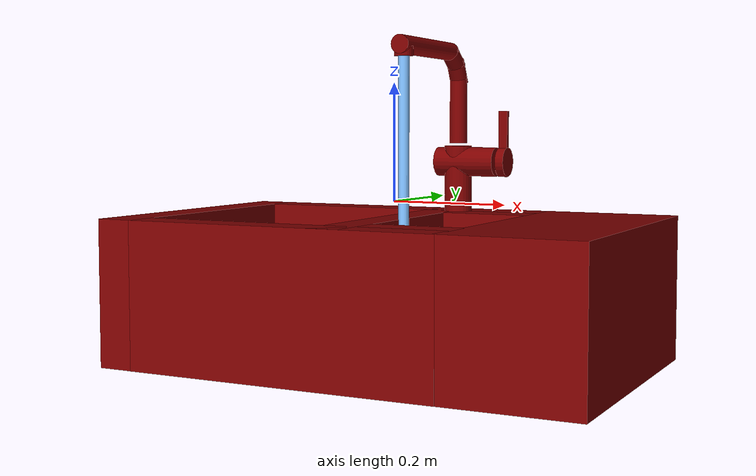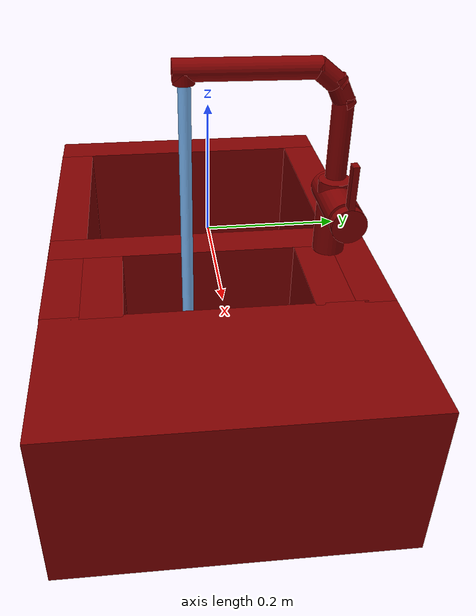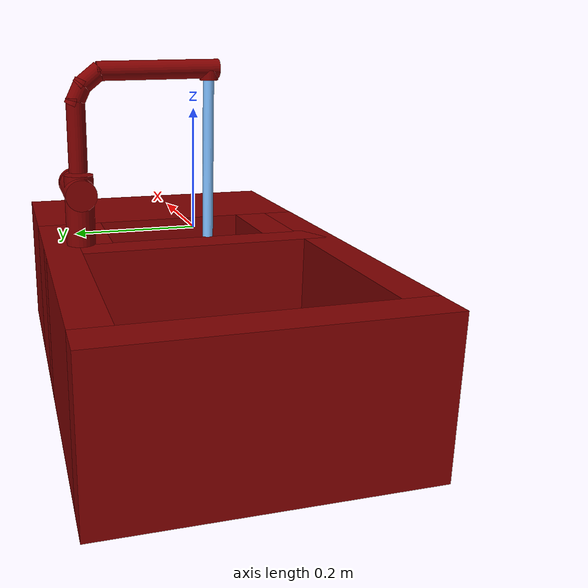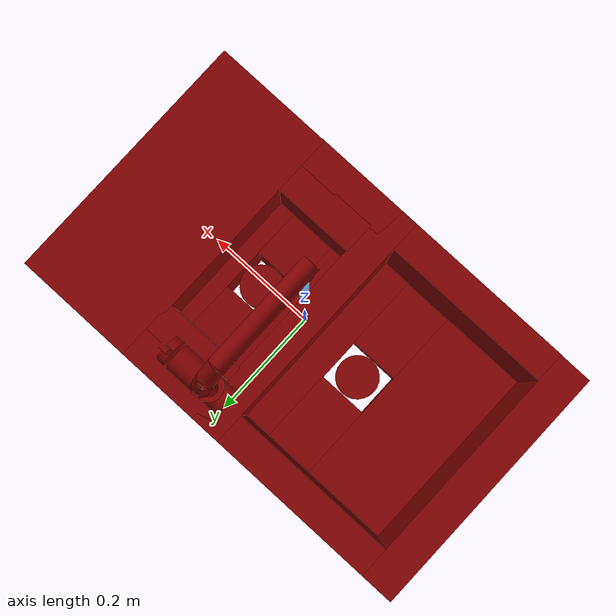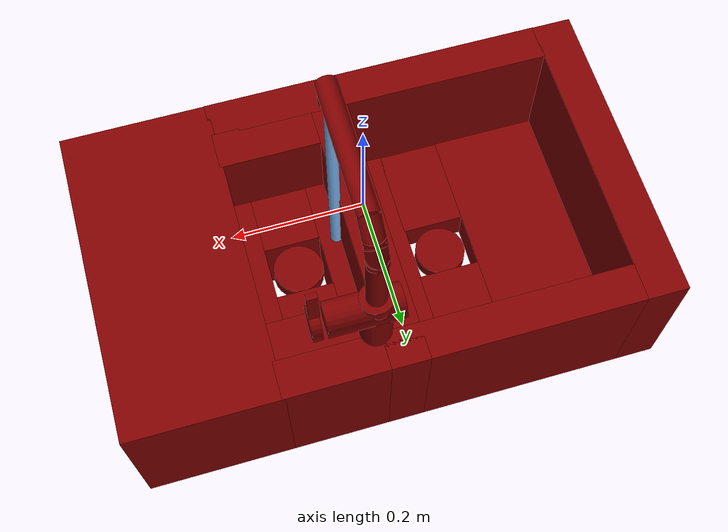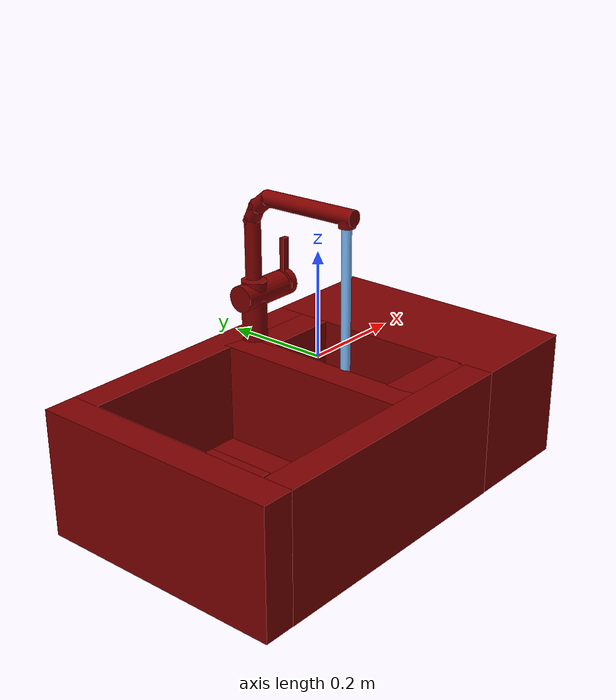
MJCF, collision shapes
<mujoco model="model">
  <compiler angle="radian"/>
  <asset>
    <mesh file="visuals/handle.obj" name="handle_vis"/>
    <mesh file="visuals/Body001.obj" name="Body001_vis"/>
    <mesh file="visuals/Funnel001.obj" name="Funnel001_vis"/>
    <mesh file="visuals/Funnel002.obj" name="Funnel002_vis"/>
    <mesh file="visuals/spout.obj" name="spout_vis"/>
    <texture file="visuals/T_BC001.png" name="Body001_material" type="2d"/>
    <material name="Body001_material" rgba="1 1 1 1.0" texture="Body001_material" shininess="0.4472135901451111" specular="0.3103448502657381"/>
    <texture file="visuals/T_BC001.png" name="handle_material" type="2d"/>
    <material name="handle_material" rgba="1 1 1 1.0" texture="handle_material" shininess="0.4472135901451111" specular="0.3103448502657381"/>
    <texture file="visuals/T_BC001.png" name="Funnel001_material" type="2d"/>
    <material name="Funnel001_material" rgba="1 1 1 1.0" texture="Funnel001_material" shininess="0.4472135901451111" specular="0.3103448502657381"/>
    <texture file="visuals/T_BC001.png" name="Funnel002_material" type="2d"/>
    <material name="Funnel002_material" rgba="1 1 1 1.0" texture="Funnel002_material" shininess="0.4472135901451111" specular="0.3103448502657381"/>
    <texture file="visuals/T_BC001.png" name="spout_material" type="2d"/>
    <material name="spout_material" rgba="1 1 1 1.0" texture="spout_material" shininess="0.4472135901451111" specular="0.3103448502657381"/>
  </asset>
  <default>
    <default class="visual">
      <geom conaffinity="0" contype="0" group="1" type="mesh"/>
    </default>
    <default class="collision">
      <geom group="0" rgba="0.5 0 0 0.5"/>
    </default>
    <default class="spawn">
      <geom group="0" rgba="1 1 1 0.5" contype="0" conaffinity="0"/>
      <site group="0" rgba="1 1 1 0.5"/>
    </default>
    <default class="region">
      <geom group="1" conaffinity="0" contype="0" rgba="0 1 0 0"/>
    </default>
  </default>
  <worldbody>
    <body>
      <body name="object">
        <geom mesh="Body001_vis" type="mesh" solimp="0.998 0.998 0.001" solref="0.001 1" density="100" friction="0.95 0.3 0.1" class="visual" material="Body001_material"/>
        <geom class="collision" type="box" pos="-0.393599 -0.000057 -0.152394" size="0.03231722488999367 0.25210869312286377 0.12578809261322021" quat="1.0 0.0 0.0 0.0"/>
        <geom class="collision" type="box" pos="0.000463 -0.000057 -0.152394" size="0.02948875166475773 0.25210869312286377 0.12578809261322021" quat="1.0 0.0 0.0 0.0"/>
        <geom class="collision" type="box" pos="0.303576 -0.000057 -0.152394" size="0.11784769594669342 0.25210869312286377 0.12578809261322021" quat="1.0 0.0 0.0 0.0"/>
        <geom class="collision" type="box" pos="-0.086141 0.222530 -0.152394" size="0.2771652936935425 0.029488762840628624 0.12578809261322021" quat="1.0 0.0 0.0 0.0"/>
        <geom class="collision" type="box" pos="-0.086141 -0.223226 -0.152394" size="0.2771652936935425 0.029488762840628624 0.12578809261322021" quat="1.0 0.0 0.0 0.0"/>
        <geom class="collision" type="box" pos="0.109079 -0.167166 -0.152394" size="0.08194547891616821 0.03034169226884842 0.12578809261322021" quat="1.0 0.0 0.0 0.0"/>
        <geom class="collision" type="box" pos="0.109079 0.165000 -0.152394" size="0.08194547891616821 0.03034169226884842 0.12578809261322021" quat="1.0 0.0 0.0 0.0"/>
        <geom class="collision" type="box" pos="-0.274527 -0.000369 -0.250090" size="0.08836553245782852 0.19444924592971802 0.028092036023736" quat="1.0 0.0 0.0 0.0"/>
        <geom class="collision" type="box" pos="-0.057293 -0.000733 -0.250090" size="0.0294963289052248 0.19408562779426575 0.028092036023736" quat="1.0 0.0 0.0 0.0"/>
        <geom class="collision" type="box" pos="-0.136239 0.118857 -0.250090" size="0.05127447471022606 0.07449623197317123 0.028092036023736" quat="1.0 0.0 0.0 0.0"/>
        <geom class="collision" type="box" pos="-0.136239 -0.118214 -0.250090" size="0.05127447471022606 0.07449623197317123 0.028092036023736" quat="1.0 0.0 0.0 0.0"/>
        <geom class="collision" type="box" pos="0.045072 -0.002129 -0.218055" size="0.01764518953859806 0.13783448934555054 0.05984923243522644" quat="1.0 0.0 0.0 0.0"/>
        <geom class="collision" type="box" pos="0.171935 -0.002129 -0.218055" size="0.01764518953859806 0.13783448934555054 0.05984923243522644" quat="1.0 0.0 0.0 0.0"/>
        <geom class="collision" type="box" pos="0.108581 0.088785 -0.218055" size="0.04652325436472893 0.04692062735557556 0.05984923243522644" quat="1.0 0.0 0.0 0.0"/>
        <geom class="collision" type="box" pos="0.108581 -0.089599 -0.218055" size="0.04652325436472893 0.04692062735557556 0.05984923243522644" quat="1.0 0.0 0.0 0.0"/>
        <geom class="collision" type="cylinder" pos="0.035790 0.187932 0.031431" size="0.02456476166844368 0.06040993332862854" quat="1.0 0.0 0.0 0.0"/>
        <geom class="collision" type="cylinder" pos="0.053787 0.188139 0.063028" size="0.026115644723176956 0.05618581548333168" quat="0.7071068286895752 -0.0 0.7071067690849304 0.0"/>
        <body name="handle">
          <joint axis="1.0 0.0 0.0" pos="0.123446 0.188001 0.063618" limited="true" name="handle_joint_hinge_0" type="hinge" range="-0.7853981633974483 0.7853981633974483" damping="1" frictionloss="1" armature=".01" stiffness="0.05"/>
          <joint axis="0.0 1.0 0.0" pos="0.123446 0.188001 0.063618" limited="true" name="handle_joint_hinge_1" type="hinge" range="0.0 0.17453292519943295" damping="1" frictionloss="1" armature=".01" stiffness="0.05"/>
          <geom mesh="handle_vis" type="mesh" solimp="0.998 0.998 0.001" solref="0.001 1" density="100" friction="0.95 0.3 0.1" class="visual" material="handle_material"/>
          <geom class="collision" type="box" pos="0.123607 0.188015 0.119955" size="0.007959337905049324 0.004582853987812996 0.03360467776656151" quat="1.0 0.0 0.0 0.0"/>
          <geom class="collision" type="cylinder" pos="0.124225 0.188139 0.063028" size="0.026115644723176956 0.007472321856766939" quat="0.7071068286895752 -0.0 0.7071067690849304 0.0"/>
        </body>
        <body name="Funnel001">
          <joint axis="0.0 0.0 1.0" pos="-0.135175 -0.000003 -0.249075" limited="true" name="Funnel001_joint" range="0.0 0.1" type="slide" damping="1" frictionloss="1" armature=".01" stiffness="0.05"/>
          <geom mesh="Funnel001_vis" type="mesh" solimp="0.998 0.998 0.001" solref="0.001 1" density="100" friction="0.95 0.3 0.1" class="visual" material="Funnel001_material"/>
          <geom class="collision" type="cylinder" pos="-0.134678 0.000483 -0.247243" size="0.04176432266831398 0.012595447711646557" quat="1.0 0.0 0.0 0.0"/>
        </body>
        <body name="Funnel002">
          <joint axis="0.0 0.0 1.0" pos="0.108112 -0.000000 -0.177778" limited="true" name="Funnel002_joint" range="0.0 0.1" type="slide" damping="1" frictionloss="1" armature=".01" stiffness="0.05"/>
          <geom mesh="Funnel002_vis" type="mesh" solimp="0.998 0.998 0.001" solref="0.001 1" density="100" friction="0.95 0.3 0.1" class="visual" material="Funnel002_material"/>
          <geom class="collision" type="cylinder" pos="0.108871 -0.000087 -0.175780" size="0.040251873433589935 0.012595447711646557" quat="1.0 0.0 0.0 0.0"/>
        </body>
        <body name="spout">
          <joint axis="0.0 0.0 1.0" pos="0.035690 0.188000 0.186114" limited="true" name="spout_joint" range="-0.7853981633974483 0.7853981633974483" type="hinge" damping="1" frictionloss="1" armature=".01" stiffness="0.05"/>
          <site type="cylinder" rgba="0.5 0.75 1 1" size="0.009254577569663525 0.24651148915290833" pos="0.035485 -0.035924 -0.003622" name="water"/>
          <geom mesh="spout_vis" type="mesh" solimp="0.998 0.998 0.001" solref="0.001 1" density="100" friction="0.95 0.3 0.1" class="visual" material="spout_material"/>
          <geom class="collision" type="cylinder" pos="0.035790 0.187932 0.157070" size="0.015719404444098473 0.06040984019637108" quat="1.0 0.0 0.0 0.0"/>
          <geom class="collision" type="cylinder" pos="0.035790 0.182112 0.224348" size="0.015719404444098473 0.022149622440338135" quat="0.9745777249336243 0.22404976189136505 0.0 0.0"/>
          <geom class="collision" type="cylinder" pos="0.035790 0.163359 0.247197" size="0.015719404444098473 0.022149620577692986" quat="0.9015616178512573 0.43265077471733093 0.0 0.0"/>
          <geom class="collision" type="cylinder" pos="0.035790 0.049872 0.260502" size="0.015719404444098473 0.10244826227426529" quat="0.7115802764892578 0.7026048302650452 0.0 0.0"/>
          <geom class="collision" type="cylinder" pos="0.035790 -0.036482 0.250809" size="0.015719404444098473 0.007953429594635963" quat="1.0 0.0 0.0 0.0"/>
        </body>
        <geom class="region" name="reg_main" type="box" pos="0.0 0.0 -0.15249600000000002" size="0.42173 0.25 0.12411400000000002"/>
        <geom class="region" name="reg_basin_left" type="box" pos="-0.1954725 -0.020340499999999997 -0.131879" size="0.1804535 0.1842515 0.091729"/>
        <geom class="region" name="reg_basin_right" type="box" pos="0.10692549999999999 -0.0010849999999999888 -0.0973305" size="0.0794555 0.140415 0.05383349999999999"/>
      </body>
    </body>
  </worldbody>
  <actuator>
    <motor name="handle_joint_hinge_0_actuator" joint="handle_joint_hinge_0" gear="10"/>
    <motor name="handle_joint_hinge_1_actuator" joint="handle_joint_hinge_1" gear="10"/>
    <motor name="Funnel001_joint_actuator" joint="Funnel001_joint" gear="10"/>
    <motor name="Funnel002_joint_actuator" joint="Funnel002_joint" gear="10"/>
    <motor name="spout_joint_actuator" joint="spout_joint" gear="10"/>
  </actuator>
</mujoco>
